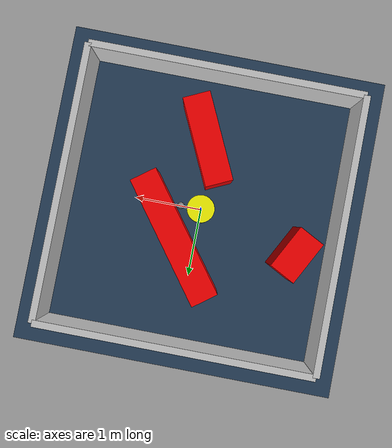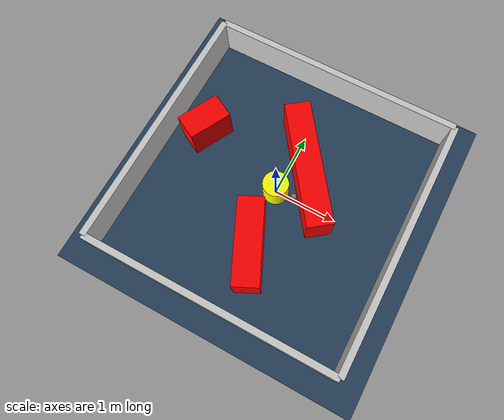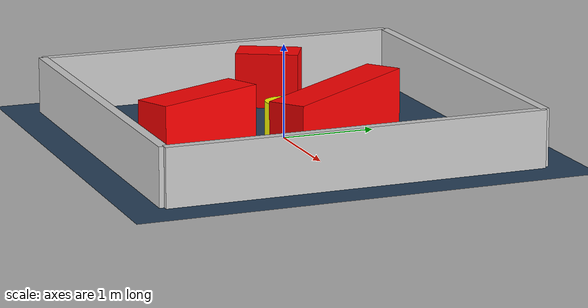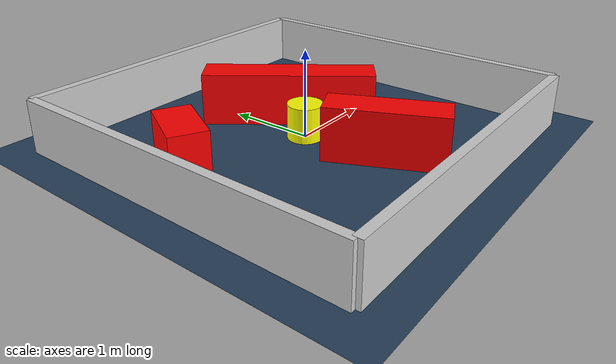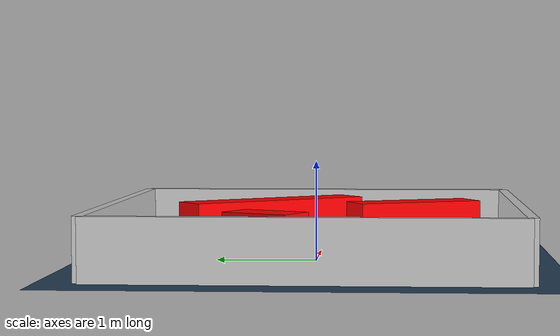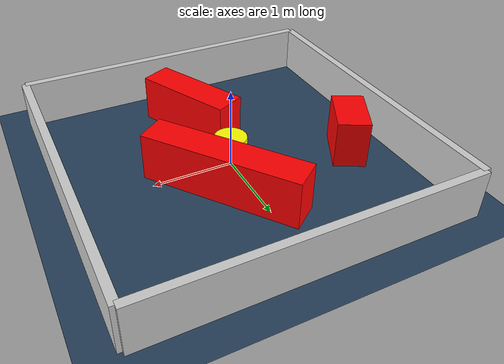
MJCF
<?xml version="1.0" ?>
<mujoco model="generated_environment">
  <option timestep="0.01" integrator="RK4" cone="elliptic"/>
  <default>
    <geom density="1"/>
  </default>
  <asset>
    <texture builtin="gradient" height="3072" rgb1="0.3 0.5 0.7" rgb2="0 0 0" type="skybox" width="512"/>
    <texture builtin="checker" height="300" mark="edge" markrgb="0.8 0.8 0.8" name="groundplane" rgb1="0.2 0.3 0.4" rgb2="0.1 0.2 0.3" type="2d" width="300"/>
    <material name="groundplane" reflectance="0.2" texrepeat="5 5" texture="groundplane" texuniform="true"/>
    <material name="robot" rgba="0.0 1.0 0.0 1"/>
  </asset>
  <worldbody>
    <light dir="0 0 -1" directional="true" pos="0 0 1.5"/>
    <geom condim="4" friction="1.0 0.005 0.001" material="groundplane" name="floor" size="0 0 0.05" type="plane"/>
    <body name="walls">
      <geom name="wall_1" condim="4" pos="-2.0 0.0 0.3" rgba="0.800000011920929 0.800000011920929 0.800000011920929 1.0" size="0.05 2.0 0.3" type="box"/>
      <geom name="wall_2" condim="4" pos="2.0 0.0 0.3" rgba="0.800000011920929 0.800000011920929 0.800000011920929 1.0" size="0.05 2.0 0.3" type="box"/>
      <geom name="wall_3" condim="4" pos="0.0 -2.0 0.3" rgba="0.800000011920929 0.800000011920929 0.800000011920929 1.0" size="2.0 0.05 0.3" type="box"/>
      <geom name="wall_4" condim="4" pos="0.0 2.0 0.3" rgba="0.800000011920929 0.800000011920929 0.800000011920929 1.0" size="2.0 0.05 0.3" type="box"/>
    </body>
    <body name="robot">
      <joint name="joint_x" type="slide" pos="0 0 0" axis="1 0 0"/>
      <joint name="joint_y" type="slide" pos="0 0 0" axis="0 1 0"/>
      <geom name="robot" type="sphere" pos="0.3 0.0 0.2" size="0.05" mass="5." friction="1.0 0.005 0.0001" condim="4" rgba="0.5 0.5 0.5 1.0"/>
      <site name="sensor_ball"/>
    </body>
    <body name="obstacle_movable_1">
      <geom name="obstacle_movable_1" condim="4" pos="0.0 0.0 0.2" euler="0 0 0.0" friction="1.0 0.005 0.001" rgba="1.0 1.0 0.0 1.0" size="0.2 0.2 0.0" type="cylinder" mass="0.1"/>
      <joint type="free"/>
    </body>
    <body name="obstacle_2_static">
      <geom name="obstacle_2_static" condim="4" pos="0.08704927242025096 -0.9783186560001894 0.3" euler="0 0 115.17176294488618" friction="1.0 0.005 0.001" rgba="1 0 0 1" size="0.6486055806414035 0.2 0.3" type="box"/>
    </body>
    <body name="obstacle_3_static">
      <geom name="obstacle_3_static" condim="4" pos="-1.4370760944730716 0.38498862130734746 0.3" euler="0 0 62.264348652104935" friction="1.0 0.005 0.001" rgba="1 0 0 1" size="0.3408807626161707 0.2 0.3" type="box"/>
    </body>
    <body name="obstacle_4_static">
      <geom name="obstacle_4_static" condim="4" pos="0.29571087420660347 0.4639027266822493 0.3" euler="0 0 126.85990705389922" friction="1.0 0.005 0.001" rgba="1 0 0 1" size="0.9822361347360142 0.2 0.3" type="box"/>
    </body>
  </worldbody>
  <actuator>
    <motor name="actuator_x" joint="joint_x" gear="1" ctrlrange="-1 1"/>
    <motor name="actuator_y" joint="joint_y" gear="1" ctrlrange="-1 1"/>
  </actuator>
</mujoco>
